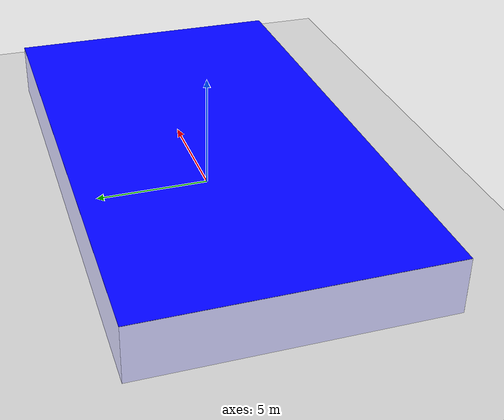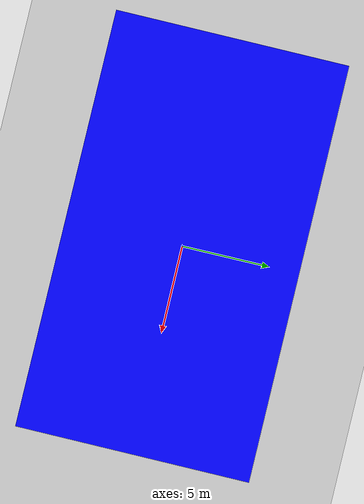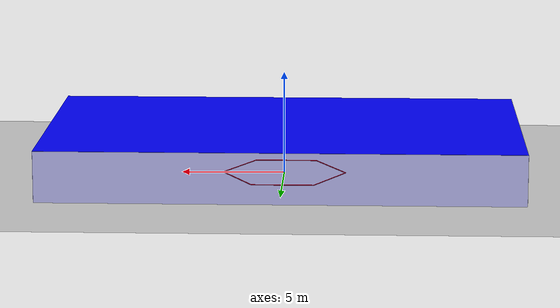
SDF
<?xml version="1.0" ?>
<sdf version="1.5">
  <world name="default">
    <gui>
      <camera name="user_camera">
        <pose>5 6 2 0 0 -2.1</pose>
      </camera>
    </gui>

    <scene>
      <ambient> 0.25 0.3 0.5 1</ambient>
      <grid>false</grid>
    </scene>

    <light type="directional" name="sun">
      <cast_shadows>true</cast_shadows>
      <pose>0 0 100 0 0 0</pose>
      <diffuse>0.8 0.8 0.8 1</diffuse>
      <specular>0.2 0.2 0.2 1</specular>
      <attenuation>
        <range>1000</range>
        <constant>0.9</constant>
        <linear>0.01</linear>
        <quadratic>0.001</quadratic>
      </attenuation>
      <direction>-0.5 0.1 -0.9</direction>
    </light>

    <model name="ground_plane">
      <static>true</static>
      <link name="link">
        <collision name="collision">
          <geometry>
            <plane>
              <normal>0 0 1</normal>
              <size>22.86 12.8</size>
            </plane>
          </geometry>
          <surface>
            <contact>
              <collide_bitmask>0xffff</collide_bitmask>
            </contact>
            <friction>
              <ode>
                <mu>100</mu>
                <mu2>50</mu2>
              </ode>
            </friction>
          </surface>
        </collision>
        <visual name="visual">
          <cast_shadows>false</cast_shadows>
          <geometry>
            <plane>
              <normal>0 0 1</normal>
              <size>22.86 12.8</size>
            </plane>
          </geometry>
          <material>
            <script>
              <uri>file://media/materials/scripts/gazebo.material</uri>
              <name>Gazebo/Grey</name>
            </script>
          </material>
        </visual>
      </link>
    </model>

    <model name="ceiling_plane">
      <static>true</static>
      <pose>0 0 2.44 0 0 0</pose>
      <link name="link">
        <collision name="collision">
          <geometry>
            <box>
              <size>22.86 12.8 .01</size>
            </box>
          </geometry>
        </collision>
        <visual name="visual">
          <cast_shadows>false</cast_shadows>
          <geometry>
            <box>
              <size>22.86 12.8 .01</size>
            </box>
          </geometry>
          <material>
            <ambient> 0 0 1 0.0 </ambient>
            <diffuse> 0 0 1 0.0 </diffuse>
          </material>
        </visual>

        <visual name="visual_sideA">
          <pose>11.43 0 -1.22 0 0 0</pose>
          <cast_shadows>false</cast_shadows>
          <geometry>
            <box>
              <size>0.01 12.8 2.44</size>
            </box>
          </geometry>
          <material>
            <ambient> 0 0 1 0.2 </ambient>
            <diffuse> 0 0 1 0.2 </diffuse>
          </material>
        </visual>

        <visual name="visual_sideB">
          <pose>-11.43 0 -1.22 0 0 0</pose>
          <cast_shadows>false</cast_shadows>
          <geometry>
            <box>
              <size>0.01 12.8 2.44</size>
            </box>
          </geometry>
          <material>
            <ambient> 0 0 1 0.2 </ambient>
            <diffuse> 0 0 1 0.2 </diffuse>
          </material>
        </visual>

        <visual name="visual_sideC">
          <pose>0 6.4 -1.22 0 0 0</pose>
          <cast_shadows>false</cast_shadows>
          <geometry>
            <box>
              <size>22.86 0.01 2.44</size>
            </box>
          </geometry>
          <material>
            <ambient> 0 0 1 0.2 </ambient>
            <diffuse> 0 0 1 0.2 </diffuse>
          </material>
        </visual>

        <visual name="visual_sideD">
          <pose>0 -6.4 -1.22 0 0 0</pose>
          <cast_shadows>false</cast_shadows>
          <geometry>
            <box>
              <size>22.86 0.01 2.44</size>
            </box>
          </geometry>
          <material>
            <ambient> 0 0 1 0.2 </ambient>
            <diffuse> 0 0 1 0.2 </diffuse>
          </material>
        </visual>
      </link>
    </model>

    <!-- LARGER HEXAGON -->
    <model name="edge1">
      <static>true</static>
      <pose>0 2.598 0.01 0 1.5708 0</pose>
      <link name="edge1">
        <visual name="visual">
          <pose>0 0 0 0 0 0</pose>
          <geometry>
            <cylinder>
              <radius>0.02</radius>
              <length>3.0</length>
            </cylinder>
          </geometry>
          <material>
            <ambient>1 0 0 1</ambient>
            <diffuse>1 0 0 1</diffuse>
          </material>
        </visual>
      </link>
    </model>

    <model name="edge2">
      <static>true</static>
      <pose>2.25 1.299 0.01 0 1.5708 -1.0472</pose>
      <link name="edge2">
        <visual name="visual">
          <pose>0 0 0 0 0 0</pose>
          <geometry>
            <cylinder>
              <radius>0.02</radius>
              <length>3.0</length>
            </cylinder>
          </geometry>
          <material>
            <ambient>1 0 0 1</ambient>
            <diffuse>1 0 0 1</diffuse>
          </material>
        </visual>
      </link>
    </model>

    <model name="edge3">
      <static>true</static>
      <pose>2.25 -1.299 0.01 0 0 -2.0944</pose>
      <link name="edge3">
        <visual name="visual">
          <pose>0 0 0 0 1.5708 0</pose>
          <geometry>
            <cylinder>
              <radius>0.02</radius>
              <length>3.0</length>
            </cylinder>
          </geometry>
          <material>
            <ambient>1 0 0 1</ambient>
            <diffuse>1 0 0 1</diffuse>
          </material>
        </visual>
      </link>
    </model>

    <model name="edge4">
      <static>true</static>
      <pose>0 -2.598 0.01 0 1.5708 0</pose>
      <link name="edge4">
        <visual name="visual">
          <pose>0 0 0 0 0 0</pose>
          <geometry>
            <cylinder>
              <radius>0.02</radius>
              <length>3.0</length>
            </cylinder>
          </geometry>
          <material>
            <ambient>1 0 0 1</ambient>
            <diffuse>1 0 0 1</diffuse>
          </material>
        </visual>
      </link>
    </model>

    <model name="edge5">
      <static>true</static>
      <pose>-2.25 -1.299 0.01 0 1.5708 2.0944</pose>
      <link name="edge5">
        <visual name="visual">
          <pose>0 0 0 0 0 0</pose>
          <geometry>
            <cylinder>
              <radius>0.02</radius>
              <length>3.0</length>
            </cylinder>
          </geometry>
          <material>
            <ambient>1 0 0 1</ambient>
            <diffuse>1 0 0 1</diffuse>
          </material>
        </visual>
      </link>
    </model>

    <model name="edge6">
      <static>true</static>
      <pose>-2.25 1.299 0.01 0 1.5708 1.0472</pose>
      <link name="edge6">
        <visual name="visual">
          <pose>0 0 0 0 0 0</pose>
          <geometry>
            <cylinder>
              <radius>0.02</radius>
              <length>3.0</length>
            </cylinder>
          </geometry>
          <material>
            <ambient>1 0 0 1</ambient>
            <diffuse>1 0 0 1</diffuse>
          </material>
        </visual>
      </link>
    </model>
  </world>
</sdf>
